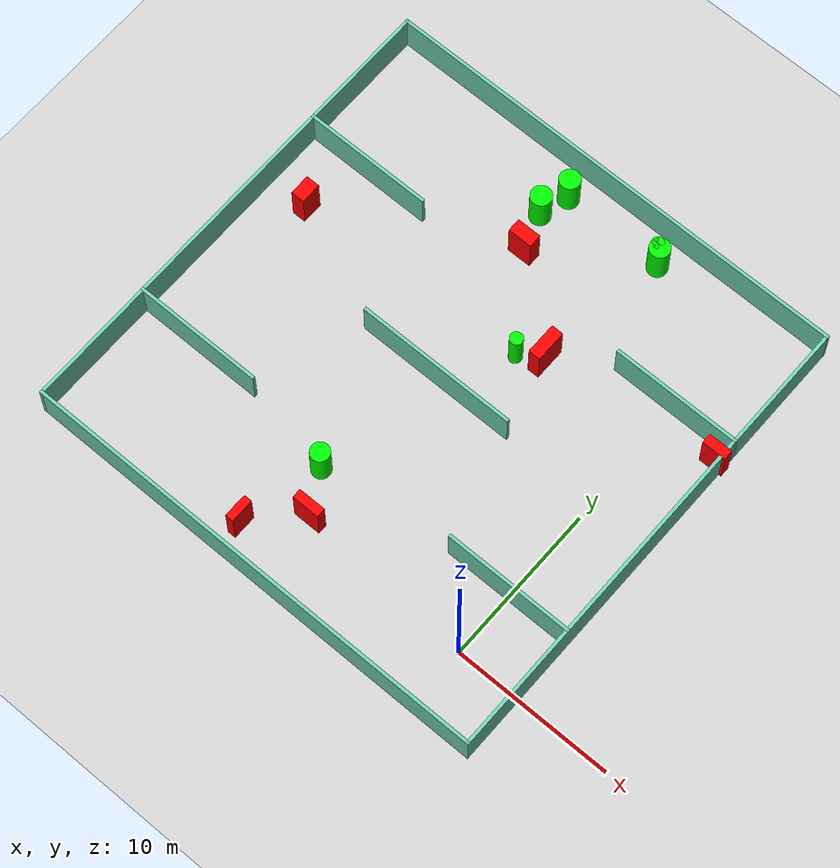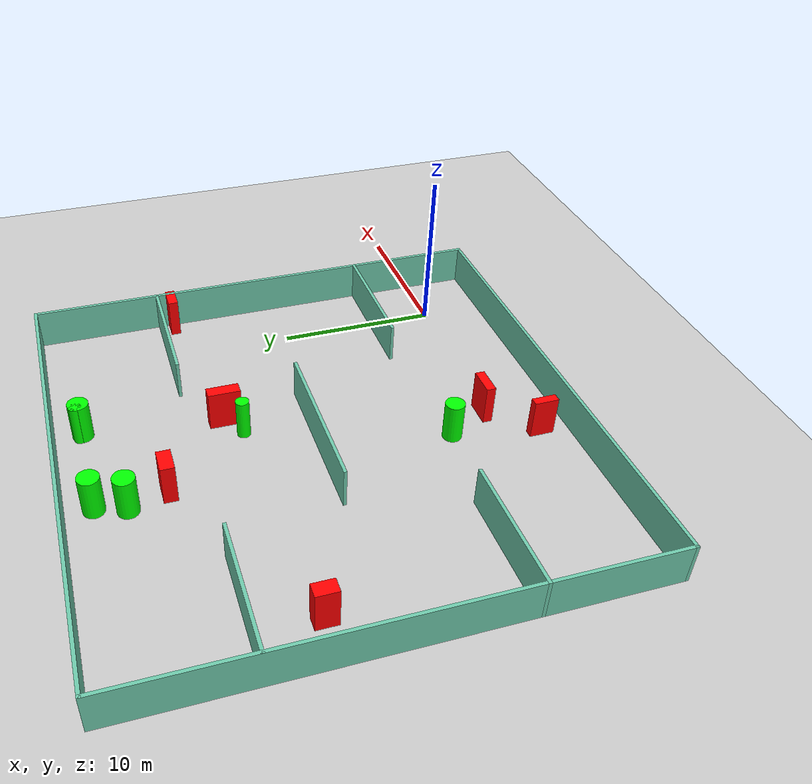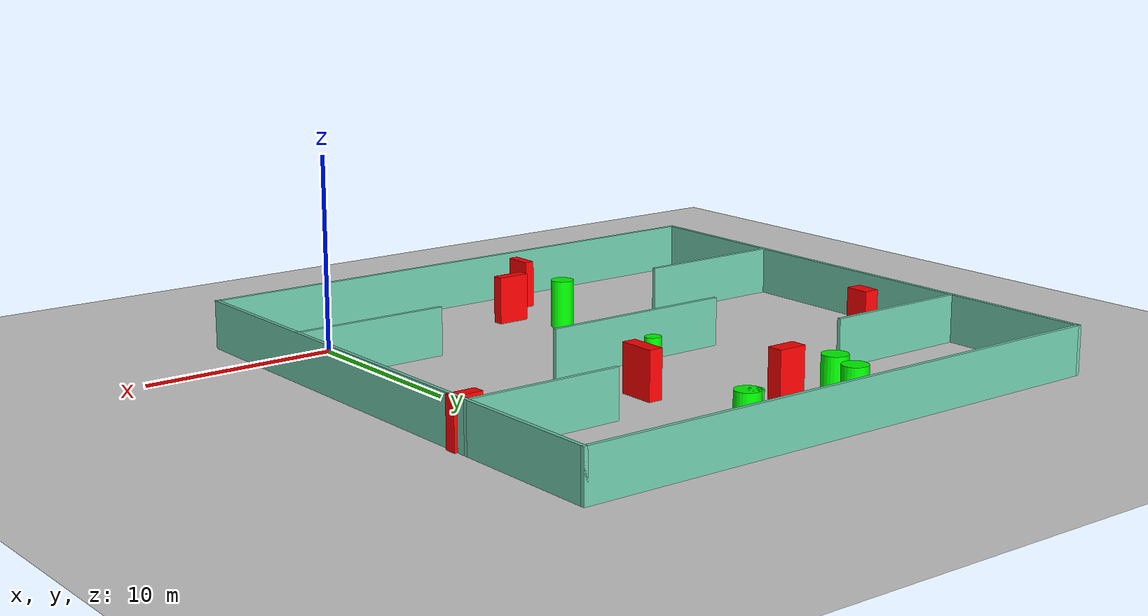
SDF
<sdf version="1.7">
 <world name="default">
  <light name="sun" type="directional">
   <pose>0 0 10 0 -0 0</pose>
   <diffuse>0.8 0.8 0.8 1</diffuse>
   <specular>0.2 0.2 0.2 1</specular>
   <attenuation>
    <range>1000</range>
    <constant>0.9</constant>
    <linear>0.01</linear>
    <quadratic>0.001</quadratic>
   </attenuation>
   <direction>-0.5 0.1 -0.9</direction>
   <spot><inner_angle>0</inner_angle><outer_angle>0</outer_angle><falloff>0</falloff></spot>
  </light>
  <model name="ground_plane">
   <static>1</static>
   <link name="link">
    <collision name="collision">
     <geometry><plane><normal>0 0 1</normal><size>100 100</size></plane></geometry>
     <surface>
      <contact><collide_bitmask>65535</collide_bitmask></contact>
      <friction><ode><mu>100</mu><mu2>50</mu2></ode></friction>
     </surface>
    </collision>
    <visual name="visual">
     <cast_shadows>0</cast_shadows>
     <geometry><plane><normal>0 0 1</normal><size>100 100</size></plane></geometry>
     <material>
      <script><uri>file://media/materials/scripts/gazebo.material</uri><name>Gazebo/Grey</name></script>
     </material>
    </visual>
   </link>
  </model>
  <gravity>0 0 -9.8</gravity>
  <magnetic_field>6e-06 2.3e-05 -4.2e-05</magnetic_field>
  <atmosphere type="adiabatic"/>
  <physics type="ode">
   <max_step_size>0.001</max_step_size>
   <real_time_factor>1</real_time_factor>
   <real_time_update_rate>1000</real_time_update_rate>
  </physics>
  <scene><ambient>0.4 0.4 0.4 1</ambient><background>0.7 0.7 0.7 1</background><shadows>1</shadows></scene>
  <spherical_coordinates>
   <surface_model>EARTH_WGS84</surface_model>
   <latitude_deg>0</latitude_deg>
   <longitude_deg>0</longitude_deg>
   <elevation>0</elevation>
   <heading_deg>0</heading_deg>
  </spherical_coordinates>
  <model name="my_base_walls">
   <link name="Wall_10">
    <collision name="Wall_10_Collision">
     <geometry><box><size>8.2 0.2 2.5</size></box></geometry>
     <pose>0 0 1.25 0 -0 0</pose>
    </collision>
    <visual name="Wall_10_Visual">
     <pose>0 0 1.25 0 -0 0</pose>
     <geometry><box><size>8.2 0.2 2.5</size></box></geometry>
     <material>
      <script><uri>file://media/materials/scripts/gazebo.material</uri><name>Gazebo/Grey</name></script>
      <ambient>0.435294 0.796078 0.67451 1</ambient>
     </material>
     <meta><layer>0</layer></meta>
    </visual>
    <pose>-11 -7 0 0 -0 0</pose>
   </link>
   <link name="Wall_12">
    <collision name="Wall_12_Collision">
     <geometry><box><size>8.2 0.2 2.5</size></box></geometry>
     <pose>0 0 1.25 0 -0 0</pose>
    </collision>
    <visual name="Wall_12_Visual">
     <pose>0 0 1.25 0 -0 0</pose>
     <geometry><box><size>8.2 0.2 2.5</size></box></geometry>
     <material>
      <script><uri>file://media/materials/scripts/gazebo.material</uri><name>Gazebo/Grey</name></script>
      <ambient>0.435294 0.796078 0.67451 1</ambient>
     </material>
     <meta><layer>0</layer></meta>
    </visual>
    <pose>-11 7 0 0 -0 0</pose>
   </link>
   <link name="Wall_14">
    <collision name="Wall_14_Collision">
     <geometry><box><size>8.2 0.2 2.5</size></box></geometry>
     <pose>0 0 1.25 0 -0 0</pose>
    </collision>
    <visual name="Wall_14_Visual">
     <pose>0 0 1.25 0 -0 0</pose>
     <geometry><box><size>8.2 0.2 2.5</size></box></geometry>
     <material>
      <script><uri>file://media/materials/scripts/gazebo.material</uri><name>Gazebo/Grey</name></script>
      <ambient>0.435294 0.796078 0.67451 1</ambient>
     </material>
     <meta><layer>0</layer></meta>
    </visual>
    <pose>11 7 0 0 -0 3.14159</pose>
   </link>
   <link name="Wall_16">
    <collision name="Wall_16_Collision">
     <geometry><box><size>10.2 0.2 2.5</size></box></geometry>
     <pose>0 0 1.25 0 -0 0</pose>
    </collision>
    <visual name="Wall_16_Visual">
     <pose>0 0 1.25 0 -0 0</pose>
     <geometry><box><size>10.2 0.2 2.5</size></box></geometry>
     <material>
      <script><uri>file://media/materials/scripts/gazebo.material</uri><name>Gazebo/Grey</name></script>
      <ambient>0.435294 0.796078 0.67451 1</ambient>
     </material>
     <meta><layer>0</layer></meta>
    </visual>
    <pose>0 0 0 0 -0 3.14159</pose>
   </link>
   <link name="Wall_2">
    <collision name="Wall_2_Collision">
     <geometry><box><size>30.2 0.2 2.5</size></box></geometry>
     <pose>0 0 1.25 0 -0 0</pose>
    </collision>
    <visual name="Wall_2_Visual">
     <pose>0 0 1.25 0 -0 0</pose>
     <geometry><box><size>30.2 0.2 2.5</size></box></geometry>
     <material>
      <script><uri>file://media/materials/scripts/gazebo.material</uri><name>Gazebo/Grey</name></script>
      <ambient>0.435294 0.796078 0.67451 1</ambient>
     </material>
     <meta><layer>0</layer></meta>
    </visual>
    <pose>0 -15 0 0 -0 3.14159</pose>
   </link>
   <link name="Wall_3">
    <collision name="Wall_3_Collision">
     <geometry><box><size>30.2 0.2 2.5</size></box></geometry>
     <pose>0 0 1.25 0 -0 0</pose>
    </collision>
    <visual name="Wall_3_Visual">
     <pose>0 0 1.25 0 -0 0</pose>
     <geometry><box><size>30.2 0.2 2.5</size></box></geometry>
     <material>
      <script><uri>file://media/materials/scripts/gazebo.material</uri><name>Gazebo/Grey</name></script>
      <ambient>0.435294 0.796078 0.67451 1</ambient>
     </material>
     <meta><layer>0</layer></meta>
    </visual>
    <pose>-15 0 0 0 -0 1.5708</pose>
   </link>
   <link name="Wall_4">
    <collision name="Wall_4_Collision">
     <geometry><box><size>30.2 0.2 2.5</size></box></geometry>
     <pose>0 0 1.25 0 -0 0</pose>
    </collision>
    <visual name="Wall_4_Visual">
     <pose>0 0 1.25 0 -0 0</pose>
     <geometry><box><size>30.2 0.2 2.5</size></box></geometry>
     <material>
      <script><uri>file://media/materials/scripts/gazebo.material</uri><name>Gazebo/Grey</name></script>
      <ambient>0.435294 0.796078 0.67451 1</ambient>
     </material>
     <meta><layer>0</layer></meta>
    </visual>
    <pose>0 15 0 0 -0 0</pose>
   </link>
   <link name="Wall_6">
    <collision name="Wall_6_Collision">
     <geometry><box><size>30.2 0.2 2.5</size></box></geometry>
     <pose>0 0 1.25 0 -0 0</pose>
    </collision>
    <visual name="Wall_6_Visual">
     <pose>0 0 1.25 0 -0 0</pose>
     <geometry><box><size>30.2 0.2 2.5</size></box></geometry>
     <material>
      <script><uri>file://media/materials/scripts/gazebo.material</uri><name>Gazebo/Grey</name></script>
      <ambient>0.435294 0.796078 0.67451 1</ambient>
     </material>
     <meta><layer>0</layer></meta>
    </visual>
    <pose>15 0 0 0 -0 1.5708</pose>
   </link>
   <link name="Wall_8">
    <collision name="Wall_8_Collision">
     <geometry><box><size>8.2 0.2 2.5</size></box></geometry>
     <pose>0 0 1.25 0 -0 0</pose>
    </collision>
    <visual name="Wall_8_Visual">
     <pose>0 0 1.25 0 -0 0</pose>
     <geometry><box><size>8.2 0.2 2.5</size></box></geometry>
     <material>
      <script><uri>file://media/materials/scripts/gazebo.material</uri><name>Gazebo/Grey</name></script>
      <ambient>0.435294 0.796078 0.67451 1</ambient>
     </material>
     <meta><layer>0</layer></meta>
    </visual>
    <pose>11 -7 0 0 -0 3.14159</pose>
   </link>
   <static>1</static>
   <pose>-11 11 0 0 -0 0</pose>
  </model>
  <model name="cylinder1">
   <static>1</static>
   <link name="link">
    <inertial>
     <mass>1</mass>
     <inertia><ixx>0.5</ixx><ixy>0</ixy><ixz>0</ixz><iyy>0.5</iyy><iyz>0</iyz><izz>1</izz></inertia>
    </inertial>
    <collision name="collision">
     <geometry><cylinder><radius>0.6485320762218191</radius><length>2.5</length></cylinder></geometry>
    </collision>
    <visual name="visual">
     <geometry><cylinder><radius>0.6485320762218191</radius><length>2.5</length></cylinder></geometry>
     <material>
      <ambient>0 1 0 1</ambient>
      <diffuse>0 1 0 1</diffuse>
      <specular>0.1 0.1 0.1 1</specular>
      <emissive>0 0 0 0</emissive>
     </material>
    </visual>
   </link>
   <pose>-13.180858836374874 22.464518090023457 1.25 0 0 0</pose>
  </model>
  <model name="cylinder2">
   <static>1</static>
   <link name="link">
    <inertial>
     <mass>1</mass>
     <inertia><ixx>0.5</ixx><ixy>0</ixy><ixz>0</ixz><iyy>0.5</iyy><iyz>0</iyz><izz>1</izz></inertia>
    </inertial>
    <collision name="collision">
     <geometry><cylinder><radius>0.6431017933458374</radius><length>2.5</length></cylinder></geometry>
    </collision>
    <visual name="visual">
     <geometry><cylinder><radius>0.6431017933458374</radius><length>2.5</length></cylinder></geometry>
     <material>
      <ambient>0 1 0 1</ambient>
      <diffuse>0 1 0 1</diffuse>
      <specular>0.1 0.1 0.1 1</specular>
      <emissive>0 0 0 0</emissive>
     </material>
    </visual>
   </link>
   <pose>-12.623171822445421 24.277900082903617 1.25 0 0 0</pose>
  </model>
  <model name="cylinder3">
   <static>1</static>
   <link name="link">
    <inertial>
     <mass>1</mass>
     <inertia><ixx>0.5</ixx><ixy>0</ixy><ixz>0</ixz><iyy>0.5</iyy><iyz>0</iyz><izz>1</izz></inertia>
    </inertial>
    <collision name="collision">
     <geometry><cylinder><radius>0.37687788105573594</radius><length>2.5</length></cylinder></geometry>
    </collision>
    <visual name="visual">
     <geometry><cylinder><radius>0.37687788105573594</radius><length>2.5</length></cylinder></geometry>
     <material>
      <ambient>0 1 0 1</ambient>
      <diffuse>0 1 0 1</diffuse>
      <specular>0.1 0.1 0.1 1</specular>
      <emissive>0 0 0 0</emissive>
     </material>
    </visual>
   </link>
   <pose>-6.474970878815547 24.41775236683141 1.25 0 0 0</pose>
  </model>
  <model name="cylinder4">
   <static>1</static>
   <link name="link">
    <inertial>
     <mass>1</mass>
     <inertia><ixx>0.5</ixx><ixy>0</ixy><ixz>0</ixz><iyy>0.5</iyy><iyz>0</iyz><izz>1</izz></inertia>
    </inertial>
    <collision name="collision">
     <geometry><cylinder><radius>0.4081845647608783</radius><length>2.5</length></cylinder></geometry>
    </collision>
    <visual name="visual">
     <geometry><cylinder><radius>0.4081845647608783</radius><length>2.5</length></cylinder></geometry>
     <material>
      <ambient>0 1 0 1</ambient>
      <diffuse>0 1 0 1</diffuse>
      <specular>0.1 0.1 0.1 1</specular>
      <emissive>0 0 0 0</emissive>
     </material>
    </visual>
   </link>
   <pose>-8.682130186112339 14.97619631378332 1.25 0 0 0</pose>
  </model>
  <model name="cylinder5">
   <static>1</static>
   <link name="link">
    <inertial>
     <mass>1</mass>
     <inertia><ixx>0.5</ixx><ixy>0</ixy><ixz>0</ixz><iyy>0.5</iyy><iyz>0</iyz><izz>1</izz></inertia>
    </inertial>
    <collision name="collision">
     <geometry><cylinder><radius>0.6308370211083105</radius><length>2.5</length></cylinder></geometry>
    </collision>
    <visual name="visual">
     <geometry><cylinder><radius>0.6308370211083105</radius><length>2.5</length></cylinder></geometry>
     <material>
      <ambient>0 1 0 1</ambient>
      <diffuse>0 1 0 1</diffuse>
      <specular>0.1 0.1 0.1 1</specular>
      <emissive>0 0 0 0</emissive>
     </material>
    </visual>
   </link>
   <pose>-6.2001723018002455 24.234452163692783 1.25 0 0 0</pose>
  </model>
  <model name="cylinder6">
   <static>1</static>
   <link name="link">
    <inertial>
     <mass>1</mass>
     <inertia><ixx>0.5</ixx><ixy>0</ixy><ixz>0</ixz><iyy>0.5</iyy><iyz>0</iyz><izz>1</izz></inertia>
    </inertial>
    <collision name="collision">
     <geometry><cylinder><radius>0.5939807233382544</radius><length>2.5</length></cylinder></geometry>
    </collision>
    <visual name="visual">
     <geometry><cylinder><radius>0.5939807233382544</radius><length>2.5</length></cylinder></geometry>
     <material>
      <ambient>0 1 0 1</ambient>
      <diffuse>0 1 0 1</diffuse>
      <specular>0.1 0.1 0.1 1</specular>
      <emissive>0 0 0 0</emissive>
     </material>
    </visual>
   </link>
   <pose>-12.372090081442447 3.1034516267851506 1.25 0 0 0</pose>
  </model>
  <model name="box1">
   <static>1</static>
   <link name="link">
    <inertial>
     <mass>1</mass>
     <inertia><ixx>0.083</ixx><ixy>0</ixy><ixz>0</ixz><iyy>0.083</iyy><iyz>0</iyz><izz>0.083</izz></inertia>
    </inertial>
    <collision name="collision">
     <geometry><box><size>0.7502089857215675 1.9723518210271818 2.5</size></box></geometry>
    </collision>
    <visual name="visual">
     <geometry><box><size>0.7502089857215675 1.9723518210271818 2.5</size></box></geometry>
     <material>
      <ambient>1 0 0 1</ambient>
      <diffuse>1 0 0 1</diffuse>
      <specular>0.1 0.1 0.1 1</specular>
      <emissive>0 0 0 0</emissive>
     </material>
    </visual>
    <sensor name="my_contact" type="contact">
     <contact><collision>box_collision</collision><topic>__default_topic__</topic></contact>
    </sensor>
   </link>
   <pose>-7.321722091724826 15.829710086110559 1.25 0 0 0</pose>
  </model>
  <model name="box2">
   <static>1</static>
   <link name="link">
    <inertial>
     <mass>1</mass>
     <inertia><ixx>0.083</ixx><ixy>0</ixy><ixz>0</ixz><iyy>0.083</iyy><iyz>0</iyz><izz>0.083</izz></inertia>
    </inertial>
    <collision name="collision">
     <geometry><box><size>0.5147207610374167 1.4985123104194766 2.5</size></box></geometry>
    </collision>
    <visual name="visual">
     <geometry><box><size>0.5147207610374167 1.4985123104194766 2.5</size></box></geometry>
     <material>
      <ambient>1 0 0 1</ambient>
      <diffuse>1 0 0 1</diffuse>
      <specular>0.1 0.1 0.1 1</specular>
      <emissive>0 0 0 0</emissive>
     </material>
    </visual>
    <sensor name="my_contact" type="contact">
     <contact><collision>box_collision</collision><topic>__default_topic__</topic></contact>
    </sensor>
   </link>
   <pose>-13.51631563237047 -2.1006241789041744 1.25 0 0 0</pose>
  </model>
  <model name="box3">
   <static>1</static>
   <link name="link">
    <inertial>
     <mass>1</mass>
     <inertia><ixx>0.083</ixx><ixy>0</ixy><ixz>0</ixz><iyy>0.083</iyy><iyz>0</iyz><izz>0.083</izz></inertia>
    </inertial>
    <collision name="collision">
     <geometry><box><size>1.7412422404957963 0.5749764978745652 2.5</size></box></geometry>
    </collision>
    <visual name="visual">
     <geometry><box><size>1.7412422404957963 0.5749764978745652 2.5</size></box></geometry>
     <material>
      <ambient>1 0 0 1</ambient>
      <diffuse>1 0 0 1</diffuse>
      <specular>0.1 0.1 0.1 1</specular>
      <emissive>0 0 0 0</emissive>
     </material>
    </visual>
    <sensor name="my_contact" type="contact">
     <contact><collision>box_collision</collision><topic>__default_topic__</topic></contact>
    </sensor>
   </link>
   <pose>-10.896406285906156 0.5332275290759521 1.25 0 0 0</pose>
  </model>
  <model name="box4">
   <static>1</static>
   <link name="link">
    <inertial>
     <mass>1</mass>
     <inertia><ixx>0.083</ixx><ixy>0</ixy><ixz>0</ixz><iyy>0.083</iyy><iyz>0</iyz><izz>0.083</izz></inertia>
    </inertial>
    <collision name="collision">
     <geometry><box><size>0.8567228603891494 1.3078616004708148 2.5</size></box></geometry>
    </collision>
    <visual name="visual">
     <geometry><box><size>0.8567228603891494 1.3078616004708148 2.5</size></box></geometry>
     <material>
      <ambient>1 0 0 1</ambient>
      <diffuse>1 0 0 1</diffuse>
      <specular>0.1 0.1 0.1 1</specular>
      <emissive>0 0 0 0</emissive>
     </material>
    </visual>
    <sensor name="my_contact" type="contact">
     <contact><collision>box_collision</collision><topic>__default_topic__</topic></contact>
    </sensor>
   </link>
   <pose>-23.33271553379694 14.298344753628484 1.25 0 0 0</pose>
  </model>
  <model name="box5">
   <static>1</static>
   <link name="link">
    <inertial>
     <mass>1</mass>
     <inertia><ixx>0.083</ixx><ixy>0</ixy><ixz>0</ixz><iyy>0.083</iyy><iyz>0</iyz><izz>0.083</izz></inertia>
    </inertial>
    <collision name="collision">
     <geometry><box><size>1.5134385460651791 0.6195814564687546 2.5</size></box></geometry>
    </collision>
    <visual name="visual">
     <geometry><box><size>1.5134385460651791 0.6195814564687546 2.5</size></box></geometry>
     <material>
      <ambient>1 0 0 1</ambient>
      <diffuse>1 0 0 1</diffuse>
      <specular>0.1 0.1 0.1 1</specular>
      <emissive>0 0 0 0</emissive>
     </material>
    </visual>
    <sensor name="my_contact" type="contact">
     <contact><collision>box_collision</collision><topic>__default_topic__</topic></contact>
    </sensor>
   </link>
   <pose>3.5016426290363647 17.10017764582132 1.25 0 0 0</pose>
  </model>
  <model name="box6">
   <static>1</static>
   <link name="link">
    <inertial>
     <mass>1</mass>
     <inertia><ixx>0.083</ixx><ixy>0</ixy><ixz>0</ixz><iyy>0.083</iyy><iyz>0</iyz><izz>0.083</izz></inertia>
    </inertial>
    <collision name="collision">
     <geometry><box><size>1.5364493746327066 0.8361902868332911 2.5</size></box></geometry>
    </collision>
    <visual name="visual">
     <geometry><box><size>1.5364493746327066 0.8361902868332911 2.5</size></box></geometry>
     <material>
      <ambient>1 0 0 1</ambient>
      <diffuse>1 0 0 1</diffuse>
      <specular>0.1 0.1 0.1 1</specular>
      <emissive>0 0 0 0</emissive>
     </material>
    </visual>
    <sensor name="my_contact" type="contact">
     <contact><collision>box_collision</collision><topic>__default_topic__</topic></contact>
    </sensor>
   </link>
   <pose>-12.41263702288953 20.109624496831483 1.25 0 0 0</pose>
  </model>
 </world>
</sdf>
